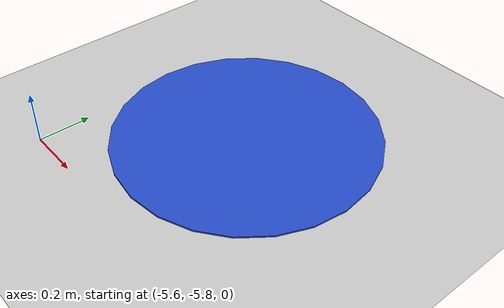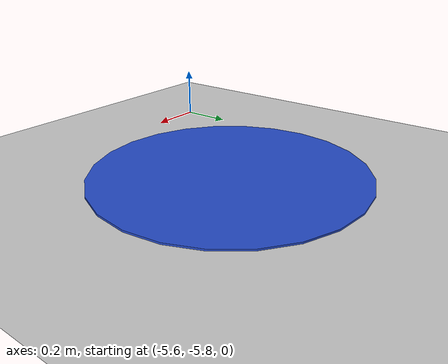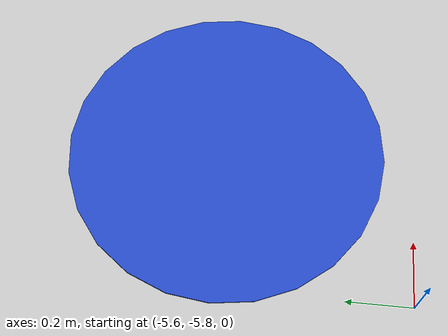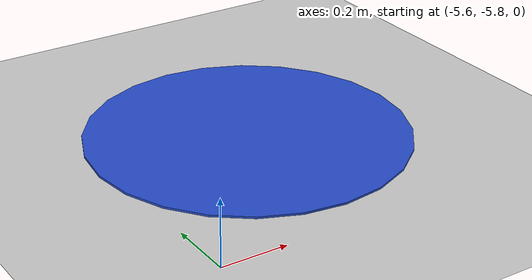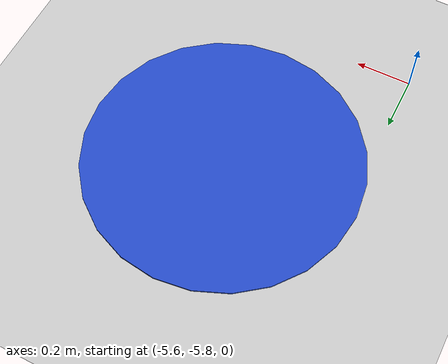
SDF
<sdf version="1.7">
 <world name="default">
  <model name="ground_plane">
   <static>1</static>
   <link name="link">
    <collision name="collision">
     <geometry><plane><normal>0 0 1</normal><size>100 100</size></plane></geometry>
     <surface>
      <contact><collide_bitmask>65535</collide_bitmask></contact>
      <friction><ode><mu>100</mu><mu2>50</mu2></ode></friction>
     </surface>
    </collision>
    <visual name="visual">
     <cast_shadows>0</cast_shadows>
     <geometry><plane><normal>0 0 1</normal><size>100 100</size></plane></geometry>
     <material>
      <script><uri>file://media/materials/scripts/gazebo.material</uri><name>Gazebo/Grey</name></script>
     </material>
    </visual>
   </link>
  </model>
  <model name="Blue_Circle_1">
   <link name="link_0">
    <inertial>
     <mass>1</mass>
     <inertia><ixx>0.145833</ixx><ixy>0</ixy><ixz>0</ixz><iyy>0.145833</iyy><iyz>0</iyz><izz>0.125</izz></inertia>
    </inertial>
    <visual name="visual">
     <geometry><cylinder><radius>0.5</radius><length>0.01</length></cylinder></geometry>
     <material>
      <lighting>1</lighting>
      <script><uri>file://media/materials/scripts/gazebo.material</uri><name>Gazebo/Blue</name></script>
      <shader type="pixel"><normal_map>__default__</normal_map></shader>
      <ambient>0.11 0.443 0.847 1</ambient>
      <diffuse>0.11 0.443 0.847 1</diffuse>
      <specular>0.11 0.443 0.847 1</specular>
      <emissive>0 0 0 1</emissive>
     </material>
    </visual>
    <collision name="collision">
     <geometry><cylinder><radius>0.5</radius><length>0.01</length></cylinder></geometry>
     <surface>
      <friction>
       <ode><mu>1</mu><mu2>1</mu2><fdir1>0 0 0</fdir1><slip1>0</slip1><slip2>0</slip2></ode>
       <torsional>
        <coefficient>1</coefficient>
        <patch_radius>0</patch_radius>
        <surface_radius>0</surface_radius>
        <use_patch_radius>1</use_patch_radius>
        <ode><slip>0</slip></ode>
       </torsional>
      </friction>
      <bounce><restitution_coefficient>0</restitution_coefficient><threshold>1e+06</threshold></bounce>
      <contact>
       <collide_without_contact>0</collide_without_contact>
       <collide_without_contact_bitmask>1</collide_without_contact_bitmask>
       <collide_bitmask>1</collide_bitmask>
       <ode>
        <soft_cfm>0</soft_cfm>
        <soft_erp>0.2</soft_erp>
        <kp>1e+13</kp>
        <kd>1</kd>
        <max_vel>0.01</max_vel>
        <min_depth>0</min_depth>
       </ode>
       <bullet>
        <split_impulse>1</split_impulse>
        <split_impulse_penetration_threshold>-0.01</split_impulse_penetration_threshold>
        <soft_cfm>0</soft_cfm>
        <soft_erp>0.2</soft_erp>
        <kp>1e+13</kp>
        <kd>1</kd>
       </bullet>
      </contact>
     </surface>
    </collision>
   </link>
   <static>1</static>
   <pose>-5.14268 -5.21167 0 0 -0 0</pose>
  </model>
 </world>
</sdf>
